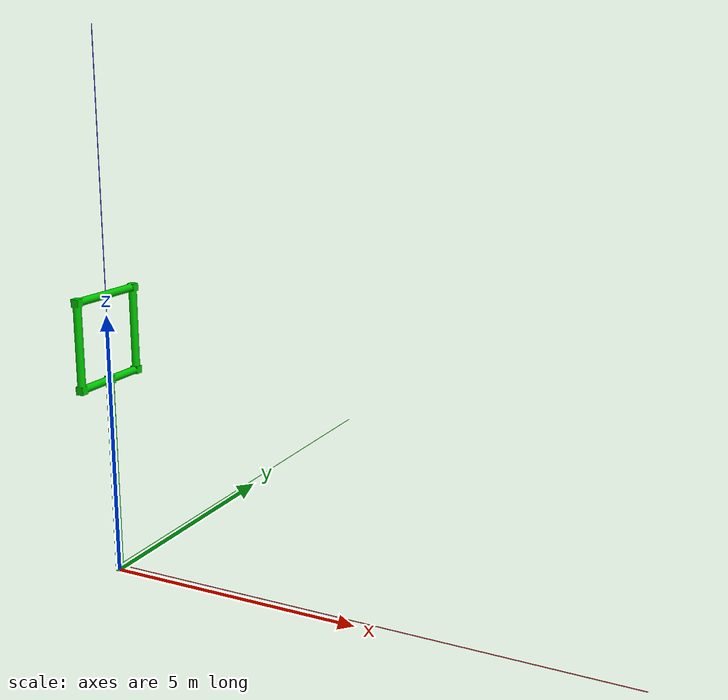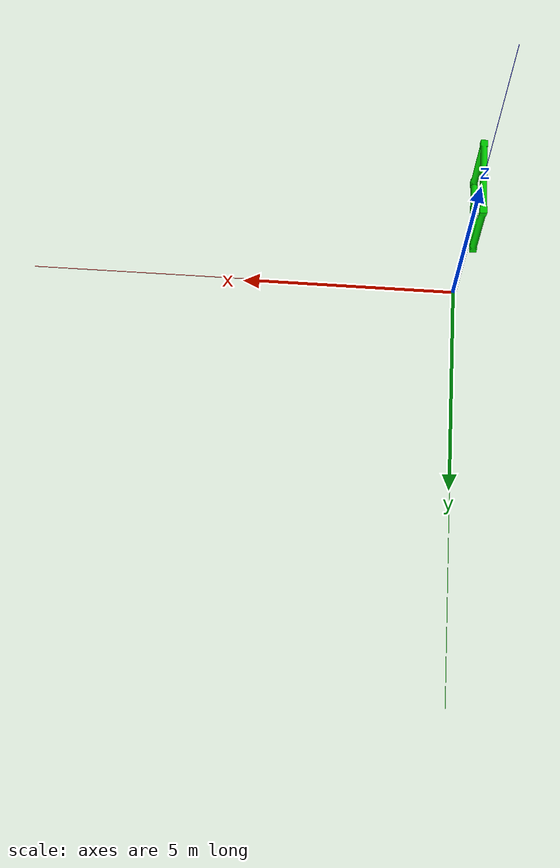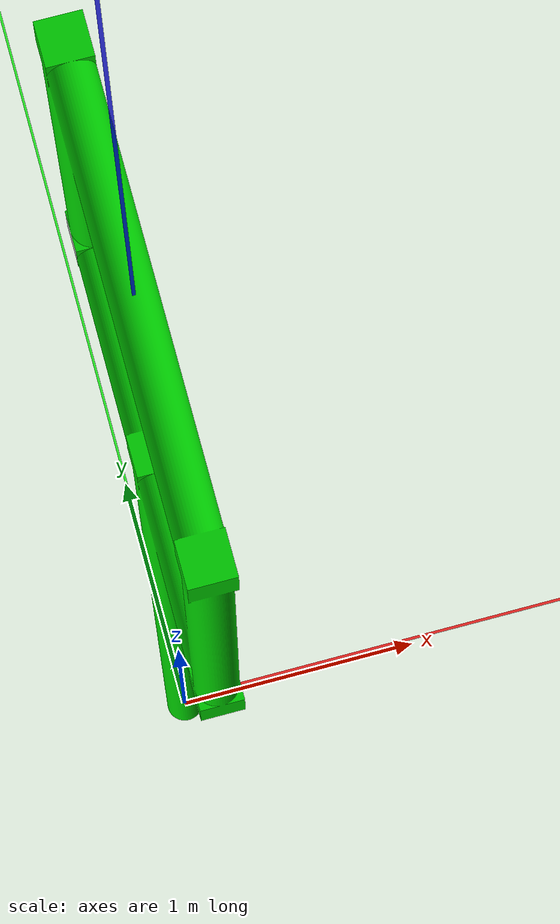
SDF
<?xml version="1.0" ?>
<sdf version="1.9">
  <world name="iris_runway">
<light type="directional" name="sun">
      <cast_shadows>true</cast_shadows>
      <pose>0 0 10 0 0 0</pose>
      <diffuse>0.8 0.8 0.8 1</diffuse>
      <specular>0.8 0.8 0.8 1</specular>
      <attenuation>
        <range>1000</range>
        <constant>0.9</constant>
        <linear>0.01</linear>
        <quadratic>0.001</quadratic>
      </attenuation>
      <direction>-0.5 0.1 -0.9</direction>
    </light>

    <model name="axes">
      <static>1</static>
      <link name="link">
        <visual name="r">
          <cast_shadows>0</cast_shadows>
          <pose>5 0 0.1 0 0 0</pose>
          <geometry>
            <box>
              <size>10 0.01 0.01</size>
            </box>
          </geometry>
          <material>
            <ambient>1 0 0 0.8</ambient>
            <diffuse>1 0 0 0.8</diffuse>
            <emissive>1 0 0 0.8</emissive>
            <specular>0.5 0.5 0.5 0.8</specular>
          </material>
        </visual>
        <visual name="g">
          <cast_shadows>0</cast_shadows>
          <pose>0 5 0.1 0 0 0</pose>
          <geometry>
            <box>
              <size>0.01 10 0.01</size>
            </box>
          </geometry>
          <material>
            <ambient>0 1 0 0.8</ambient>
            <diffuse>0 1 0 0.8</diffuse>
            <emissive>0 1 0 0.8</emissive>
            <specular>0.5 0.5 0.5 0.8</specular>
          </material>
        </visual>
        <visual name="b">
          <cast_shadows>0</cast_shadows>
          <pose>0 0 5.1 0 0 0</pose>
          <geometry>
            <box>
              <size>0.01 0.01 10</size>
            </box>
          </geometry>
          <material>
            <ambient>0 0 1 0.8</ambient>
            <diffuse>0 0 1 0.8</diffuse>
            <emissive>0 0 1 0.8</emissive>
            <specular>0.5 0.5 0.5 0.8</specular>
          </material>
        </visual>
      </link>
    </model>

    <include>
        <uri>model://obstacle</uri>
        <pose>0 0 0 0 0 0</pose>
        <static>true</static>
    </include>
  </world>
</sdf>

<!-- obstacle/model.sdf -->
<sdf version='1.9'>
  <model name='obstacle'>
    <pose>0 0 0 0 0 0</pose>
    <static>true</static>
    <link name="link">
      <collision name="collision">
        <geometry>
          <mesh>
            <scale>3 3 3</scale>
            <uri>model://obstacle/meshes/obstacle.stl</uri>
          </mesh>
        </geometry>
      </collision>
      <visual name="visual">
        <geometry>
          <mesh>
            <scale>3 3 3</scale>
            <uri>model://obstacle/meshes/obstacle.dae</uri>
          </mesh>
        </geometry>
      </visual>
    </link>
  </model>
</sdf>
